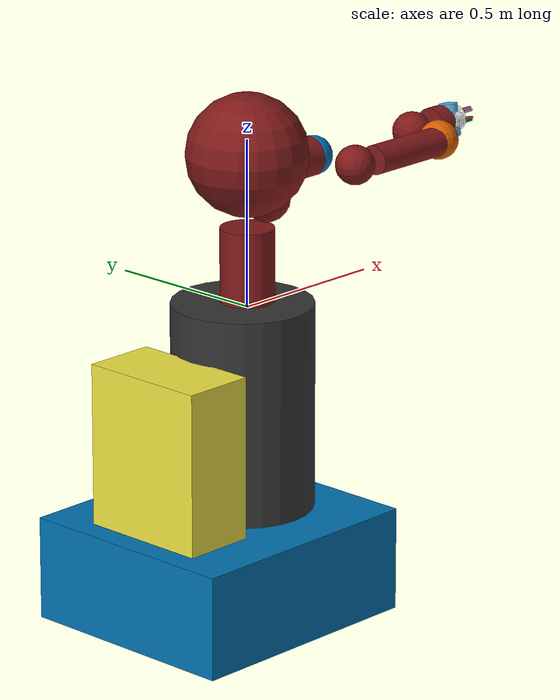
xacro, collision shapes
<?xml version="1.0" ?>
<robot name="sawyer" xmlns:xacro="http://www.ros.org/wiki/xacro">

  <xacro:arg name="gazebo" default="false"/>
  <xacro:arg name="pedestal" default="true"/>
  <xacro:arg name="static" default="true"/>
  <xacro:arg name="external_motor" default="true"/>
  <!-- Sawyer Base URDF -->
  <xacro:include filename="$(find sawyer_description)/urdf/sawyer_base.urdf.xacro">
    <xacro:arg name="gazebo" value="${gazebo}"/>
    <xacro:arg name="pedestal" value="${pedestal}"/>
  </xacro:include>
  <xacro:if value="$(arg gazebo)">
  <xacro:include filename="$(find sawyer_description)/urdf/sawyer_base.gazebo.xacro">
    <xacro:arg name="static" value="${static}"/>
    <xacro:arg name="pedestal" value="${pedestal}"/>
  </xacro:include>
  </xacro:if>
  <!-- Electric Gripper End Effector -->
  <xacro:if value="$(arg external_motor)">
  <xacro:include filename="$(find sawyer_description)/urdf/electric_external_motor.xacro">
    <xacro:arg name="gazebo" value="${gazebo}"/>
  </xacro:include>
  </xacro:if>

</robot>

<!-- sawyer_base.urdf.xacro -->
<robot name="sawyer" xmlns:xacro="http://www.ros.org/wiki/xacro">
  <xacro:arg name="gazebo" default="false"/>
  <xacro:arg name="pedestal" default="true"/>
  <material name="black">
    <color rgba="0 0 0 1"/>
  </material>
  <material name="darkgray">
    <color rgba=".2 .2 .2 1"/>
  </material>
  <material name="darkred">
    <color rgba=".5 .1 .1 1"/>
  </material>
  <material name="sawyer_red">
    <color rgba=".5 .1 .1 1"/>
  </material>
  <material name="sawyer_gray">
    <color rgba="0.75294 0.75294 0.75294 1"/>
  </material>
  <link name="base"/>
  <link name="torso">
    <visual>
      <origin rpy="0 0 0" xyz="0 0 0"/>
      <geometry>
        <box size="0.001 0.001 0.001"/>
      </geometry>
      <material name="darkgray">
        <color rgba=".2 .2 .2 1"/>
      </material>
    </visual>
<xacro:unless value="$(arg gazebo)">
    <inertial>
      <origin rpy="0 0 0" xyz="0.000000 0.000000 0.000000"/>
      <mass value="0.0001"/>
      <inertia ixx="1e-08" ixy="0" ixz="0" iyy="1e-08" iyz="0" izz="1e-08"/>
    </inertial>
</xacro:unless>
  </link>
<xacro:if value="$(arg pedestal)">
  <link name="pedestal">
    <visual>
      <origin rpy="1.57079632679 0 -1.57079632679" xyz="0.26 0.345 -0.91488"/>
      <geometry>
        <mesh filename="package://sawyer_description/meshes/sawyer_pv/pedestal.DAE"/>
      </geometry>
      <material name="darkgray"/>
    </visual>
    <collision>
      <origin rpy="0 0 0" xyz="-0.02 0 -0.29"/>
      <geometry>
        <cylinder length="0.62" radius="0.21"/>
      </geometry>
    </collision>
    <inertial>
      <origin rpy="0 0 0" xyz="0 0 -0.5"/>
      <mass value="60.86397744"/>
      <inertia ixx="5.0635929" ixy="0.00103417" ixz="0.80199628" iyy="6.08689388" iyz="0.00105311" izz="4.96191932"/>
    </inertial>
  </link>
  <link name="controller_box">
    <collision>
      <origin rpy="0 0 0" xyz="-0.325 0 -0.38"/>
      <geometry>
        <box size="0.22 0.4 0.53"/>
      </geometry>
    </collision>
  </link>
  <joint name="controller_box_fixed" type="fixed">
    <origin rpy="0 0 0" xyz="0.0 0.0 0.0"/>
    <parent link="base"/>
    <child link="controller_box"/>
  </joint>
  <link name="pedestal_feet">
    <collision>
      <origin rpy="0 0 0" xyz="-0.1225 0 -0.758"/>
      <geometry>
        <box size="0.77 0.7 0.31"/>
      </geometry>
    </collision>
  </link>
  <joint name="pedestal_feet_fixed" type="fixed">
    <origin rpy="0 0 0" xyz="0.0 0.0 0.0"/>
    <parent link="base"/>
    <child link="pedestal_feet"/>
  </joint>
  <joint name="pedestal_fixed" type="fixed">
    <origin rpy="0 0 0" xyz="0.0 0.0 0.0"/>
    <parent link="base"/>
    <child link="pedestal"/>
  </joint>
</xacro:if>
  <joint name="right_arm_mount" type="fixed">
    <origin rpy="0 0 0" xyz="0.0 0.0 0.0"/>
    <parent link="base"/>
    <child link="right_arm_base_link"/>
  </joint>
  <joint name="torso_t0" type="fixed">
    <origin rpy="0 0 0" xyz="0 0 0"/>
    <parent link="base"/>
    <child link="torso"/>
  </joint>
  <link name="right_arm_base_link">
    <inertial>
      <origin rpy="0 0 0" xyz="-0.0006241 -2.8025E-05 0.065404"/>
      <mass value="2.0687"/>
      <inertia ixx="0.0067599" ixy="-4.2024E-05" ixz="-6.1904E-07" iyy="0.0067877" iyz="1.5888E-05" izz="0.0074031"/>
    </inertial>
    <visual>
      <origin rpy="0 0 0" xyz="0 0 0"/>
      <geometry>
        <mesh filename="package://sawyer_description/meshes/sawyer_pv/base.DAE"/>
      </geometry>
      <material name="sawyer_red"/>
    </visual>
    <collision>
      <origin rpy="0 0 0" xyz="0 0 0.12"/>
      <geometry>
        <cylinder length="0.24" radius="0.08"/>
      </geometry>
    </collision>
  </link>
  <link name="right_l0">
    <inertial>
      <origin rpy="0 0 0" xyz="0.024366 0.010969 0.14363"/>
      <mass value="5.3213"/>
      <inertia ixx="0.053314" ixy="0.0047093" ixz="0.011734" iyy="0.057902" iyz="0.0080179" izz="0.023659"/>
    </inertial>
    <visual>
      <origin rpy="0 0 0" xyz="0 0 0"/>
      <geometry>
        <mesh filename="package://sawyer_description/meshes/sawyer_mp3/l0.DAE"/>
      </geometry>
      <material name="sawyer_red"/>
    </visual>
    <collision>
      <origin rpy="0 0 0" xyz="0.08 0 0.23"/>
      <geometry>
        <sphere radius="0.07"/>
      </geometry>
    </collision>
  </link>
  <joint name="right_j0" type="revolute">
    <origin rpy="0 0 0" xyz="0 0 0.08"/>
    <parent link="right_arm_base_link"/>
    <child link="right_l0"/>
    <axis xyz="0 0 1"/>
    <limit effort="80.0" lower="-3.0503" upper="3.0503" velocity="1.74"/>
<xacro:if value="$(arg gazebo)">
    <dynamics damping="10.0" friction="5.0"/>
</xacro:if>
  </joint>
  <link name="head">
    <inertial>
      <origin rpy="0 0 0" xyz="0.0053207 -2.6549E-05 0.1021"/>
      <mass value="1.5795"/>
      <inertia ixx="0.011833" ixy="-4.4669E-06" ixz="4.9425E-05" iyy="0.0082709" iyz="4.2124E-07" izz="0.0049661"/>
    </inertial>
    <visual>
      <origin rpy="0 0 0" xyz="0 0 0"/>
      <geometry>
        <mesh filename="package://sawyer_description/meshes/sawyer_pv/head.DAE"/>
      </geometry>
      <material name="sawyer_red"/>
    </visual>
    <collision>
      <origin rpy="0 0 0" xyz="0 0 0.08"/>
      <geometry>
        <sphere radius="0.18"/>
      </geometry>
    </collision>
  </link>
  <joint name="head_pan" type="revolute">
    <origin rpy="0 0 0" xyz="0 0 0.2965"/>
    <parent link="right_l0"/>
    <child link="head"/>
    <axis xyz="0 0 1"/>
    <limit effort="8" lower="-5.0952" upper="0.9064" velocity="1.8"/>
<xacro:if value="$(arg gazebo)">
    <dynamics damping="1.0" friction="0.5"/>
</xacro:if>
  </joint>
  <link name="right_torso_itb">
<xacro:unless value="$(arg gazebo)">
    <inertial>
      <origin rpy="0 0 0" xyz="0.000000 0.000000 0.000000"/>
      <mass value="0.0001"/>
      <inertia ixx="1e-08" ixy="0" ixz="0" iyy="1e-08" iyz="0" izz="1e-08"/>
    </inertial>
</xacro:unless>
  </link>
  <joint name="right_torso_itb" type="fixed">
    <origin rpy="0 -1.57079632679 0" xyz="-.055 0 .22"/>
    <parent link="right_l0"/>
    <child link="right_torso_itb"/>
    <axis xyz="0 0 1"/>
  </joint>
  <link name="right_l1">
    <inertial>
      <origin rpy="0 0 0" xyz="-0.0030849 -0.026811 0.092521"/>
      <mass value="4.505"/>
      <inertia ixx="0.022398" ixy="-0.00023986" ixz="-0.00029362" iyy="0.014613" iyz="-0.0060875" izz="0.017295"/>
    </inertial>
    <visual>
      <origin rpy="0 0 0" xyz="0 0 0"/>
      <geometry>
        <mesh filename="package://sawyer_description/meshes/sawyer_mp3/l1.DAE"/>
      </geometry>
      <material name="sawyer_red"/>
    </visual>
    <collision>
      <origin rpy="0 0 0" xyz="0 0 0.1225"/>
      <geometry>
        <sphere radius="0.07"/>
      </geometry>
    </collision>
  </link>
  <joint name="right_j1" type="revolute">
    <origin rpy="-1.57079632679 1.57079632679 0" xyz="0.081 0.05 0.237"/>
    <parent link="right_l0"/>
    <child link="right_l1"/>
    <axis xyz="0 0 1"/>
    <limit effort="80.0" lower="-3.8095" upper="2.2736" velocity="1.328"/>
<xacro:if value="$(arg gazebo)">
    <dynamics damping="5.0" friction="2.0"/>
</xacro:if>
  </joint>
  <link name="right_l2">
    <inertial>
      <origin rpy="0 0 0" xyz="-0.00016044 -0.014967 0.13582"/>
      <mass value="1.745"/>
      <inertia ixx="0.025506" ixy="4.4101E-06" ixz="1.4955E-05" iyy="0.0253" iyz="-0.0033204" izz="0.0034179"/>
    </inertial>
    <visual>
      <origin rpy="0 0 0" xyz="0 0 0"/>
      <geometry>
        <mesh filename="package://sawyer_description/meshes/sawyer_pv/l2.DAE"/>
      </geometry>
      <material name="sawyer_red"/>
    </visual>
    <collision>
      <origin rpy="0 0 0" xyz="0 0 0.08"/>
      <geometry>
        <cylinder length="0.34" radius="0.06"/>
      </geometry>
    </collision>
  </link>
  <joint name="right_j2" type="revolute">
    <origin rpy="1.57079632679 0 0" xyz="0 -0.14 0.1425"/>
    <parent link="right_l1"/>
    <child link="right_l2"/>
    <axis xyz="0 0 1"/>
    <limit effort="40.0" lower="-3.0426" upper="3.0426" velocity="1.957"/>
<xacro:if value="$(arg gazebo)">
    <dynamics damping="5.0" friction="2.0"/>
</xacro:if>
  </joint>
  <link name="right_l3">
    <inertial>
      <origin rpy="0 0 0" xyz="-0.0048135 -0.0281 -0.084154"/>
      <mass value="2.5097"/>
      <inertia ixx="0.01016" ixy="-9.7452E-06" ixz="0.00026624" iyy="0.0065685" iyz="0.0030316" izz="0.0069078"/>
    </inertial>
    <visual>
      <origin rpy="0 0 0" xyz="0 0 0"/>
      <geometry>
        <mesh filename="package://sawyer_description/meshes/sawyer_pv/l3.DAE"/>
      </geometry>
      <material name="sawyer_red"/>
    </visual>
    <collision>
      <origin rpy="0 0 0" xyz="0 -0.01 -0.12"/>
      <geometry>
        <sphere radius="0.06"/>
      </geometry>
    </collision>
  </link>
  <joint name="right_j3" type="revolute">
    <origin rpy="-1.57079632679 0 0" xyz="0 -0.042 0.26"/>
    <parent link="right_l2"/>
    <child link="right_l3"/>
    <axis xyz="0 0 1"/>
    <limit effort="40.0" lower="-3.0439" upper="3.0439" velocity="1.957"/>
 <xacro:if value="$(arg gazebo)">
    <dynamics damping="1.0" friction="0.5"/>
</xacro:if>
  </joint>
  <link name="right_l4">
    <inertial>
      <origin rpy="0 0 0" xyz="-0.0018844 0.0069001 0.1341"/>
      <mass value="1.1136"/>
      <inertia ixx="0.013557" ixy="1.8109E-05" ixz="0.00013523" iyy="0.013555" iyz="0.0010561" izz="0.0013658"/>
    </inertial>
    <visual>
      <origin rpy="0 0 0" xyz="0 0 0"/>
      <geometry>
        <mesh filename="package://sawyer_description/meshes/sawyer_pv/l4.DAE"/>
      </geometry>
      <material name="sawyer_red"/>
    </visual>
    <collision>
      <origin rpy="0 0 0" xyz="0 0 0.11"/>
      <geometry>
        <cylinder length="0.30" radius="0.045"/>
      </geometry>
    </collision>
  </link>
  <joint name="right_j4" type="revolute">
    <origin rpy="1.57079632679 0 0" xyz="0 -0.125 -0.1265"/>
    <parent link="right_l3"/>
    <child link="right_l4"/>
    <axis xyz="0 0 1"/>
    <limit effort="9.0" lower="-2.9761" upper="2.9761" velocity="3.485"/>
<xacro:if value="$(arg gazebo)">
    <dynamics damping="2.0" friction="1.0"/>
</xacro:if>
  </joint>
  <link name="right_arm_itb">
<xacro:unless value="$(arg gazebo)">
    <inertial>
      <origin rpy="0 0 0" xyz="0.000000 0.000000 0.000000"/>
      <mass value="0.0001"/>
      <inertia ixx="1e-08" ixy="0" ixz="0" iyy="1e-08" iyz="0" izz="1e-08"/>
    </inertial>
</xacro:unless>
  </link>
  <joint name="right_arm_itb" type="fixed">
    <origin rpy="0 -1.57079632679 0" xyz="-.055 0 .075"/>
    <parent link="right_l4"/>
    <child link="right_arm_itb"/>
    <axis xyz="0 0 1"/>
  </joint>
  <link name="right_l5">
    <inertial>
      <origin rpy="0 0 0" xyz="0.0061133 -0.023697 0.076416"/>
      <mass value="1.5625"/>
      <inertia ixx="0.0047328" ixy="0.00011526" ixz="4.6269E-05" iyy="0.0029676" iyz="-0.0011557" izz="0.0031762"/>
    </inertial>
    <visual>
      <origin rpy="0 0 0" xyz="0 0 0"/>
      <geometry>
        <mesh filename="package://sawyer_description/meshes/sawyer_pv/l5.DAE"/>
      </geometry>
      <material name="sawyer_red"/>
    </visual>
    <collision>
      <origin rpy="0 0 0" xyz="0 0 0.1"/>
      <geometry>
        <sphere radius="0.06"/>
      </geometry>
    </collision>
  </link>
  <joint name="right_j5" type="revolute">
    <origin rpy="-1.57079632679 0 0" xyz="0 0.031 0.275"/>
    <parent link="right_l4"/>
    <child link="right_l5"/>
    <axis xyz="0 0 1"/>
    <limit effort="9.0" lower="-2.9761" upper="2.9761" velocity="3.485"/>
<xacro:if value="$(arg gazebo)">
    <dynamics damping="1.0" friction="0.5"/>
</xacro:if>
  </joint>
  <link name="right_hand_camera"/>
  <joint name="right_hand_camera" type="fixed">
    <origin rpy="0 1.57079632679 0" xyz="0.039552 -0.033 0.0695"/>
    <parent link="right_l5"/>
    <child link="right_hand_camera"/>
    <axis xyz="0 0 0"/>
  </joint>
  <link name="right_wrist"/>
  <joint name="right_wrist" type="fixed">
    <origin rpy="1.57079632679 0 0" xyz="0 0 0.10541"/>
    <parent link="right_l5"/>
    <child link="right_wrist"/>
    <axis xyz="0 0 0"/>
  </joint>
  <link name="right_l6">
    <inertial>
      <origin rpy="0 0 0" xyz="-8.0726E-06 0.0085838 -0.0049566"/>
      <mass value="0.3292"/>
      <inertia ixx="0.00031105" ixy="1.4771E-06" ixz="-3.7074E-07" iyy="0.00021549" iyz="-8.4533E-06" izz="0.00035976"/>
    </inertial>
    <visual>
      <origin rpy="0 0 0" xyz="0 0 0"/>
      <geometry>
        <mesh filename="package://sawyer_description/meshes/sawyer_mp1/l6.DAE"/>
      </geometry>
      <material name="sawyer_red"/>
    </visual>
    <collision>
      <origin rpy="0 0 0" xyz="0 0.015 -0.01"/>
      <geometry>
        <cylinder length="0.05" radius="0.055"/>
      </geometry>
    </collision>
  </link>
  <joint name="right_j6" type="revolute">
    <origin rpy="-1.57079632679 -0.17453 3.1416" xyz="0 -0.11 0.1053"/>
    <parent link="right_l5"/>
    <child link="right_l6"/>
    <axis xyz="0 0 1"/>
<xacro:if value="$(arg gazebo)">
    <limit effort="9.0" lower="-3.14" upper="3.14" velocity="4.545"/>
    <dynamics damping="1.0" friction="0.5"/>
</xacro:if>
<xacro:unless value="$(arg gazebo)">
    <limit effort="9.0" lower="-4.7124" upper="4.7124" velocity="4.545"/>
</xacro:unless>
  </joint>
  <link name="right_hand">
    <collision>
      <origin rpy="0 0 0" xyz="0 0 0.02"/>
      <geometry>
        <cylinder length="0.03" radius="0.035"/>
      </geometry>
    </collision>
<xacro:if value="$(arg gazebo)">
    <inertial>
      <origin rpy="0 0 0" xyz="0 0.1 0"/>
      <mass value="0.01"/>
      <inertia ixx="0.01" ixy="0.01" ixz="0.01" iyy="0.01" iyz="0.01" izz="0.01"/>
  </inertial>
</xacro:if>
<xacro:unless value="$(arg gazebo)">
    <inertial>
      <origin rpy="0 0 0" xyz="1.0E-08 1.0E-08 1.0E-08"/>
      <mass value="1.0E-08"/>
      <inertia ixx="1.0E-08" ixy="1.0E-08" ixz="1.0E-08" iyy="1.0E-08" iyz="1.0E-08" izz="1.0E-08"/>
    </inertial>
</xacro:unless>
  </link>
  <joint name="right_hand" type="fixed">
    <origin rpy="0 0 1.570796" xyz="0 0 0.0245"/>
    <axis xyz="0 0 1"/>
    <parent link="right_l6"/>
    <child link="right_hand"/>
  </joint>
  <link name="right_l1_2">
<xacro:unless value="$(arg gazebo)">
    <inertial>
      <origin rpy="0 0 0" xyz="1.0E-08 1.0E-08 1.0E-08"/>
      <mass value="1.0E-08"/>
      <inertia ixx="1.0E-08" ixy="1.0E-08" ixz="1.0E-08" iyy="1.0E-08" iyz="1.0E-08" izz="1.0E-08"/>
    </inertial>
</xacro:unless>
    <collision>
      <origin rpy="0 0 0" xyz="0 0 0.035"/>
      <geometry>
        <cylinder length="0.14" radius="0.07"/>
      </geometry>
    </collision>
  </link>
  <joint name="right_j1_2" type="fixed">
    <origin rpy="0 0 0" xyz="0 0 0"/>
    <parent link="right_l1"/>
    <child link="right_l1_2"/>
    <axis xyz="0 0 1"/>
  </joint>
  <link name="right_l2_2">
<xacro:unless value="$(arg gazebo)">
    <inertial>
      <origin rpy="0 0 0" xyz="1.0E-08 1.0E-08 1.0E-08"/>
      <mass value="1.0E-08"/>
      <inertia ixx="1.0E-08" ixy="1.0E-08" ixz="1.0E-08" iyy="1.0E-08" iyz="1.0E-08" izz="1.0E-08"/>
    </inertial>
</xacro:unless>
    <collision>
      <origin rpy="0 0 0" xyz="0 0 0.26"/>
      <geometry>
        <sphere radius="0.06"/>
      </geometry>
    </collision>
  </link>
  <joint name="right_j2_2" type="fixed">
    <origin rpy="0 0 0" xyz="0 0 0"/>
    <parent link="right_l2"/>
    <child link="right_l2_2"/>
    <axis xyz="0 0 1"/>
  </joint>
  <link name="right_l4_2">
<xacro:unless value="$(arg gazebo)">
    <inertial>
      <origin rpy="0 0 0" xyz="1.0E-08 1.0E-08 1.0E-08"/>
      <mass value="1.0E-08"/>
      <inertia ixx="1.0E-08" ixy="1.0E-08" ixz="1.0E-08" iyy="1.0E-08" iyz="1.0E-08" izz="1.0E-08"/>
    </inertial>
</xacro:unless>
    <collision>
      <origin rpy="0 0 0" xyz="0 0.01 0.26"/>
      <geometry>
        <sphere radius="0.06"/>
      </geometry>
    </collision>
  </link>
  <joint name="right_j4_2" type="fixed">
    <origin rpy="0 0 0" xyz="0 0 0"/>
    <parent link="right_l4"/>
    <child link="right_l4_2"/>
    <axis xyz="0 0 1"/>
  </joint>
  <link name="screen">
    <visual>
      <origin rpy="0 0 0" xyz="0 0 0"/>
      <geometry>
        <box size="0.24 0.14 0.002"/>
      </geometry>
      <material name="darkgray"/>
    </visual>
    <collision>
      <origin rpy="0 0 0" xyz="0 0 0"/>
      <geometry>
        <sphere radius="0.001"/>
      </geometry>
    </collision>
<xacro:unless value="$(arg gazebo)">
    <inertial>
      <origin rpy="0 0 0" xyz="0 0 0"/>
      <mass value="0.0001"/>
      <inertia ixx="1e-08" ixy="0" ixz="0" iyy="1e-08" iyz="0" izz="1e-08"/>
    </inertial>
</xacro:unless>
  </link>
  <joint name="display_joint" type="fixed">
    <origin rpy="1.57079632679 0 1.57079632679" xyz="0.03 0.0 0.105"/>
    <parent link="head"/>
    <child link="screen"/>
  </joint>
  <link name="head_camera"/>
  <joint name="head_camera" type="fixed">
    <origin rpy="-2.1293 0 -1.57079632679" xyz="0.0228027 0 0.216572"/>
    <parent link="head"/>
    <child link="head_camera"/>
    <axis xyz="0 0 0"/>
  </joint>
</robot>

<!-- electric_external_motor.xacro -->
<robot name="end_effector" xmlns:xacro="http://www.ros.org/wiki/xacro">
  <xacro:arg name="gazebo" default="false"/>
  <xacro:if value="$(arg gazebo)">
    <xacro:property name="gazebo_tag" value="true" scope="local"/>
  </xacro:if>
  <xacro:unless value="$(arg gazebo)">
    <xacro:property name="gazebo_tag" value="false" scope="local"/>
  </xacro:unless>

  <xacro:include filename="$(find intera_tools_description)/urdf/electric_gripper/external_motor.xacro" />
</robot>

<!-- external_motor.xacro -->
<robot xmlns:xacro="http://www.ros.org/wiki/xacro" name="external_motor">

    <xacro:property name="side" value="right" scope="local"/>
    <xacro:property name="use_connector" value="true" scope="local"/>
    <xacro:property name="use_connector_plate" value="true" scope="local"/>
    <xacro:property name="gazebo" value="true" scope="local"/>
    <xacro:property name="use_motor" value="true" scope="local"/>
    <xacro:property name="gripper_side" value="${side}" scope="local"/>
    <xacro:property name="l_finger" value="standard_narrow" scope="local"/>
    <xacro:property name="r_finger" value="standard_narrow" scope="local"/>
    <xacro:property name="l_finger_slot" value="2" scope="local"/>
    <xacro:property name="r_finger_slot" value="2" scope="local"/>
    <xacro:property name="l_finger_tip" value="basic_soft_tip" scope="local"/>
    <xacro:property name="r_finger_tip" value="basic_soft_tip" scope="local"/>
    <xacro:property name="l_finger_grasp" value="inner" scope="local"/>
    <xacro:property name="r_finger_grasp" value="inner" scope="local"/>

    <!-- Base of whole end effector - (Connector Plate + Electric Gripper + Fingers + Tips) -->
    <link name="${side}_gripper_base">
      <inertial>
        <!-- Sum Gripper Mass - for whole end effector, measured from end of plastic cuff -->
        <mass value="0.47"/>
        <origin rpy="0 0 0" xyz="0.0028 -0.0004 0.0343"/>
        <inertia ixx="1e-08" ixy="0" ixz="0" iyy="1e-08" iyz="0" izz="1e-08"/>
      </inertial>
    </link>

    <!-- Electric Gripper Base Link -->
    <link name="${side}_electric_gripper_base">
      <visual>
        <origin rpy="0 0 0" xyz="0 0 0"/>
        <geometry>
          <mesh filename="package://intera_tools_description/meshes/electric_gripper/electric_gripper_base.DAE"/>
        </geometry>
      </visual>
      <collision>
        <origin rpy="${-pi/2} ${pi} 0" xyz="0.004 0.0 0.025"/>
        <geometry>
          <cylinder length="0.1" radius="0.029"/>
        </geometry>
        <material name="darkred">
          <color rgba=".5 .1 .1 1"/>
        </material>
      </collision>
      <inertial>
        <origin rpy="${-pi/2} ${pi} 0" xyz="0.0 0.0 0.0"/>
        <mass value="2e-06"/>
        <inertia ixx="1.1e-09" ixy="0" ixz="0" iyy="1.1e-09" iyz="0" izz="1.1e-09"/>
      </inertial>
    </link>

   <xacro:unless value="${use_connector_plate}">
     <xacro:property name="electric_gripper_parent_link" value="${side}_gripper_base" scope="local"/>
     <xacro:property name="connector_plate_length" value="0.0" scope="local"/>
   </xacro:unless>
   <xacro:if value="${use_connector_plate}">
     <!-- Connector Plate Joint -->
     <joint name="${side}_connector_plate_base_joint" type="fixed">
       <origin xyz="0 0 0.0018" rpy="0 0 0" />
       <parent link="${side}_gripper_base"  />
       <child  link="${side}_connector_plate_base" />
     </joint>
     <!-- Connector Plate Link -->
     <xacro:include filename="$(find intera_tools_description)/urdf/connector_plate/connector_plate.xacro" />
     <xacro:rethink_connector_plate side="${side}" gazebo="${gazebo}"/>
     <xacro:property name="electric_gripper_parent_link" value="${side}_connector_plate_mount" scope="local"/>
     <xacro:property name="connector_plate_length" value="${rethink_connector_plate_length}" scope="local"/>
   </xacro:if>

   <!-- Electric Gripper Base joint -->
    <joint name="${side}_electric_gripper_base_joint" type="fixed">
      <origin rpy="0 0 0" xyz="0 0 0"/>
      <parent link="${electric_gripper_parent_link}"/>
      <child link="${side}_electric_gripper_base"/>
    </joint>

    <!-- Left finger link -->
    <xacro:property name="finger_length" value="0.0" scope="global"/>
    <xacro:include filename="$(find intera_tools_description)/urdf/electric_gripper/fingers/${l_finger}.xacro" />
    <xacro:finger_xacro gripper_side="${gripper_side}" finger_side="l" reflect="1" finger_tip="${l_finger_tip}" finger_grasp="${l_finger_grasp}" gazebo="${gazebo}"/>
    <xacro:property name="tip_finger_length" value="${finger_length}" scope="local"/>

    <!-- Right finger link -->
    <xacro:include filename="$(find intera_tools_description)/urdf/electric_gripper/fingers/${r_finger}.xacro" />
    <xacro:finger_xacro gripper_side="${gripper_side}" finger_side="r" reflect="-1" finger_tip="${r_finger_tip}" finger_grasp="${r_finger_grasp}" gazebo="${gazebo}"/>
    <xacro:if value="${finger_length > tip_finger_length}">
        <xacro:property name="tip_finger_length" value="${finger_length}" scope="local"/>
    </xacro:if>

    <!-- Gripper Base Joint -->
    <xacro:property name="end_of_arm_offset" value="-0.005" scope="local"/>
    <joint name="${side}_gripper_base_joint" type="fixed">
      <origin rpy="0 0 0" xyz="0 0 ${end_of_arm_offset}"/>
      <parent link="${side}_hand"/>
      <child link="${side}_gripper_base"/>
    </joint>

    <!-- Gripper Tip joint -->
    <xacro:property name="electric_gripper_base_length" value="0.04552" scope="local"/>
    <joint name="${side}_gripper_tip_joint" type="fixed">
      <origin rpy="0 0 0" xyz="0 0 ${(-1*end_of_arm_offset)+connector_plate_length+electric_gripper_base_length+tip_finger_length}"/>
      <parent link="${side}_gripper_base"/>
      <child link="${side}_gripper_tip"/>
    </joint>

    <!-- Electric Gripper Tip link -->
    <link name="${side}_gripper_tip">
      <inertial>
        <origin xyz="0 0 0" rpy="0 0 0"/>
        <mass value="2e-06"/>
        <inertia ixx="1.1e-09" ixy="0" ixz="0" iyy="1.1e-09" iyz="0" izz="1.1e-09"/>
      </inertial>
    </link>

    <!-- Left finger -->
    <xacro:property name="l_finger_offset" value="${((l_finger_slot-1)*0.0095) -0.011}" scope="local"/>
    <joint name="${gripper_side}_gripper_l_finger_joint" type="prismatic">
      <origin rpy="0 0 0" xyz="0.003 ${l_finger_offset} ${electric_gripper_base_length}"/>
      <axis xyz="0 1 0"/>
      <parent link="${side}_electric_gripper_base"/>
      <child link="${gripper_side}_gripper_l_finger"/>
      <limit effort="20.0" lower="0.0" upper="0.020833" velocity="5.0"/>
      <dynamics damping="100.0" friction="500.0"/>
    </joint>

    <!-- Right finger -->
    <xacro:property name="r_finger_offset" value="${((r_finger_slot-1)*-0.0095) +0.011}" scope="local"/>
    <joint name="${gripper_side}_gripper_r_finger_joint" type="prismatic">
      <origin rpy="0 0 0" xyz="0.003 ${r_finger_offset} ${electric_gripper_base_length}"/>
      <axis xyz="0 1 0"/>
      <parent link="${side}_electric_gripper_base"/>
      <child link="${gripper_side}_gripper_r_finger"/>
      <limit effort="20.0" lower="-0.020833" upper="0.0" velocity="5.0"/>
      <mimic joint="${gripper_side}_gripper_l_finger_joint" multiplier="-1.0"/>
      <dynamics damping="100.0" friction="500.0"/>
    </joint>

   <xacro:if value="${use_connector}">
     <joint name="${side}_connector_base_joint" type="fixed">
       <origin xyz="0 0 0.05" rpy="0 0 0" />
       <parent link="${side}_gripper_base"  />
       <child  link="${side}_connector_base" />
     </joint>
     <xacro:include filename="$(find intera_tools_description)/urdf/connector_plate/connector.xacro" />
     <xacro:rethink_connector side="${side}" gazebo="${gazebo}"/>
     <xacro:property name="connector_length" value="${rethink_connector_length}" scope="local"/>
   </xacro:if>

   <xacro:if value="${use_motor}">
     <joint name="${side}_motor" type="fixed">
       <origin xyz="0 0 0.04" rpy="0 0 0" />
       <parent link="${side}_gripper_base"  />
       <child  link="${side}_motor_base" />
     </joint>
     <xacro:include filename="$(find intera_tools_description)/urdf/connector_plate/motor.xacro" />
     <xacro:nema_motor side="${side}" gazebo="${gazebo}"/>
   </xacro:if>

</robot>

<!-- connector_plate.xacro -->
<robot xmlns:xacro="http://www.ros.org/wiki/xacro" name="rethink_connector_plate">
  <xacro:macro name="rethink_connector_plate" params="side gazebo">
  <xacro:property name="rethink_connector_plate_length" value="0.0151" scope="global"/>
  <link name="${side}_connector_plate_base">
    <inertial>
      <origin xyz="0 0 0" rpy="0 0 0" />
      <mass value="0.0" />
      <inertia ixx="6.9922E-05"  ixy="6.1026E-08"  ixz="-1.7042E-06"
               iyy="6.8188E-05"  iyz="-1.6118E-08" izz="0.00012392" />
    </inertial>
    <visual>
      <origin xyz="0 0 0" rpy="0 0 0" />
      <geometry>
        <mesh filename="package://intera_tools_description/meshes/connector_plate/connector_plate.STL" />
      </geometry>
      <material name="black">
        <color rgba="0.05 0.05 0.05 1" />
      </material>
    </visual>
    <collision>
      <origin xyz="0 0 0.0135" rpy="0 0 0" />
        <geometry>
          <cylinder length="${rethink_connector_plate_length*2.0}" radius="0.04"/>
        </geometry>
        <material name="darkred">
          <color rgba=".5 .1 .1 1"/>
        </material>
    </collision>
  </link>
  <xacro:if value="${gazebo}">
    <gazebo reference="${side}_connector_plate_base">
      <material>Gazebo/FlatBlack</material>
    </gazebo>
  </xacro:if>
  <link name="${side}_connector_plate_mount" />
  <joint name="${side}_connector_plate_mount_joint" type="fixed">
    <origin xyz="0 0 ${rethink_connector_plate_length+0.0025}" rpy="0 0 0" />
    <parent link="${side}_connector_plate_base"  />
    <child  link="${side}_connector_plate_mount" />
  </joint>

  </xacro:macro>
</robot>

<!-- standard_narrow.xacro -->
<robot xmlns:xacro="http://www.ros.org/wiki/xacro" name="standard_narrow">
  <xacro:macro name="finger_xacro" params="gripper_side finger_side reflect finger_tip finger_grasp gazebo">
  <xacro:property name="finger_length" value="0.075" scope="global"/>
  <xacro:property name="finger_width" value="0.01725" scope="local"/>
    <link name="${gripper_side}_gripper_${finger_side}_finger">
      <visual>
        <origin rpy="0 0 ${-pi/2*(reflect+1)}" xyz="0 0 0"/>
        <geometry>
          <mesh filename="package://intera_tools_description/meshes/electric_gripper/fingers/standard_narrow.DAE" />
        </geometry>
      </visual>
      <xacro:property name="finger_box_height" value="0.01" scope="local"/>
      <xacro:property name="finger_box_width" value="0.0135" scope="local"/>
      <xacro:property name="finger_box_length" value="0.04" scope="local"/>
      <collision>
        <origin rpy="0 0 ${-pi/2*(reflect+1)}" xyz="0 ${finger_width*reflect} ${finger_box_length}"/>
        <geometry>
          <box size="${finger_box_height} ${finger_box_width} ${finger_length}"/>
        </geometry>
      </collision>
      <xacro:property name="knuckle_box_height" value="0.01" scope="local"/>
      <xacro:property name="knuckle_box_width" value="0.017" scope="local"/>
      <xacro:property name="knuckle_box_length" value="${finger_width + 0.03275}" scope="local"/>
      <collision>
        <origin rpy="0 0 ${-pi/2*(reflect+1)}" xyz="${reflect*-0.005} ${-0.003*reflect} 0.0083"/>
        <geometry>
          <box size="${knuckle_box_height} ${knuckle_box_length} ${knuckle_box_width}"/>
        </geometry>
      </collision>
      <inertial>
        <origin rpy="0 0 ${-pi/2*(reflect+1)}" xyz="0 0 0"/>
        <mass value="0.001"/>
        <inertia ixx="0.01" ixy="0" ixz="0" iyy="0.01" iyz="0" izz="0.01"/>
      </inertial>
    </link>

    <xacro:if value="${gazebo}">
      <gazebo reference="${gripper_side}_gripper_${finger_side}_finger">
        <mu1>1000</mu1>
        <mu2>1000</mu2>
        <fdir1>0.0 0.0 1.0</fdir1>
        <kp>1e5</kp>
        <kd>1.0</kd>
      </gazebo>
    </xacro:if>

    <xacro:property name="none" value="[none, false, null, empty]" scope="local"/>
    <xacro:if value="${finger_tip in none}">
      <xacro:property name="finger_tip" value="none" scope="local"/>
    </xacro:if>
    <xacro:include filename="$(find intera_tools_description)/urdf/electric_gripper/fingers/${finger_tip}.xacro" />
    <xacro:finger_tip_xacro parent_link="${gripper_side}_gripper_${finger_side}_finger" reflect="${reflect}" grasp="${finger_grasp}">
        <origin rpy="0 0 0" xyz="0.0 ${reflect*finger_width} ${finger_length}"/>
    </xacro:finger_tip_xacro>

  </xacro:macro>
</robot>

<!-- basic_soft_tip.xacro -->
<robot xmlns:xacro="http://www.ros.org/wiki/xacro" name="basic_soft_tip">
  <xacro:macro name="finger_tip_xacro" params="parent_link reflect grasp *joint_origin">
    <xacro:property name="g_reflect" value="${reflect}" scope="local"/>
    <xacro:if value="${grasp == 'outer'}">
      <xacro:property name="g_reflect" value="${-reflect}" scope="local"/>
    </xacro:if>
    <link name="${parent_link}_tip">
      <visual>
        <origin rpy="0 0 ${pi*(g_reflect+1)/2}" xyz="0 0 0"/>
        <geometry>
          <mesh filename="package://intera_tools_description/meshes/electric_gripper/fingers/basic_soft_tip.DAE" />
        </geometry>
      </visual>
      <collision>
        <origin rpy="0 0 ${pi*(g_reflect+1)/2}" xyz="0 ${-0.0045*g_reflect} -0.015"/>
        <geometry>
          <box size="0.016 0.007 0.037"/>
        </geometry>
      </collision>
      <inertial>
        <origin rpy="0 0 ${pi*(g_reflect+1)/2}" xyz="0 0 0"/>
        <mass value="0.001"/>
        <inertia ixx="0.01" ixy="0" ixz="0" iyy="0.01" iyz="0" izz="0.01"/>
      </inertial>
    </link>

    <joint name="${parent_link}_tip_joint" type="fixed">
      <xacro:insert_block name="joint_origin" />
      <parent link="${parent_link}"/>
      <child link="${parent_link}_tip"/>
    </joint>
  </xacro:macro>
</robot>

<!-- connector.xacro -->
<robot xmlns:xacro="http://www.ros.org/wiki/xacro" name="rethink_connector_plate">
  <xacro:macro name="rethink_connector" params="side gazebo">
  <xacro:property name="rethink_connector_length" value="0.0151" scope="global"/>
  <link name="${side}_connector_base">
    <inertial>
      <origin xyz="0 0 0" rpy="0 0 0" />
      <mass value="0.0" />
      <inertia ixx="6.9922E-05"  ixy="6.1026E-08"  ixz="-1.7042E-06"
               iyy="6.8188E-05"  iyz="-1.6118E-08" izz="0.00012392" />
    </inertial>
    <visual>
      <origin xyz="-0.05 -0.04 0" rpy="-1.57079632679 -1.57079632679 0" />
      <geometry>
        <mesh filename="package://intera_tools_description/meshes/connector_plate/connector.STL" scale="0.01 0.01 0.01" />
      </geometry>
      <material name="white">
        <color rgba="1 1 1 1" />
      </material>
    </visual>
    <collision>
      <origin xyz="0 0 0.0135" rpy="0 0 0" />
        <geometry>
          <cylinder length="${rethink_connector_length*2.0}" radius="0.04"/>
        </geometry>
        <material name="darkred">
          <color rgba=".5 .1 .1 1"/>
        </material>
    </collision>
  </link>
  <xacro:if value="${gazebo}">
    <gazebo reference="${side}_connector_plate_base">
      <material>Gazebo/FlatBlack</material>
    </gazebo>
  </xacro:if>
  <link name="${side}_connector_mount" />
  <joint name="${side}_connector_mount_joint" type="fixed">
    <origin xyz="0 0 ${rethink_connector_length+0.0025}" rpy="0 0 0" />
    <parent link="${side}_connector_base"  />
    <child  link="${side}_connector_mount" />
  </joint>

  </xacro:macro>
</robot>

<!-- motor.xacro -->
<robot xmlns:xacro="http://www.ros.org/wiki/xacro" name="rethink_connector_plate">
  <xacro:macro name="nema_motor" params="side gazebo">
  <xacro:property name="rethink_connector_length" value="0.0151" scope="global"/>
  <link name="${side}_motor_base">
    <inertial>
      <origin xyz="0 0 0" rpy="0 0 0" />
      <mass value="0.0" />
      <inertia ixx="6.9922E-05"  ixy="6.1026E-08"  ixz="-1.7042E-06"
               iyy="6.8188E-05"  iyz="-1.6118E-08" izz="0.00012392" />
    </inertial>
    <visual>
      <origin xyz="0.005 -0.005 0" rpy="0 0 0" />
      <geometry>
        <mesh filename="package://intera_tools_description/meshes/connector_plate/nema_motor.STL" />
      </geometry>
      <material name="white">
        <color rgba="1 1 1 1" />
      </material>
    </visual>
    <collision>
      <origin xyz="0 0 0.0135" rpy="0 0 0" />
        <geometry>
          <cylinder length="${rethink_connector_length*2.0}" radius="0.04"/>
        </geometry>
        <material name="darkred">
          <color rgba=".5 .1 .1 1"/>
        </material>
    </collision>
  </link>
  <xacro:if value="${gazebo}">
    <gazebo reference="${side}_connector_plate_base">
      <material>Gazebo/FlatBlack</material>
    </gazebo>
  </xacro:if>
  </xacro:macro>

  <link name="${side}_motor_tip" />
  <joint name="${side}_motor_tip_joint" type="fixed">
    <origin xyz="0.003 0.0035 0.136" rpy="0 0 0" />
    <parent link="${side}_motor_base"  />
    <child  link="${side}_motor_tip" />
  </joint>
</robot>
